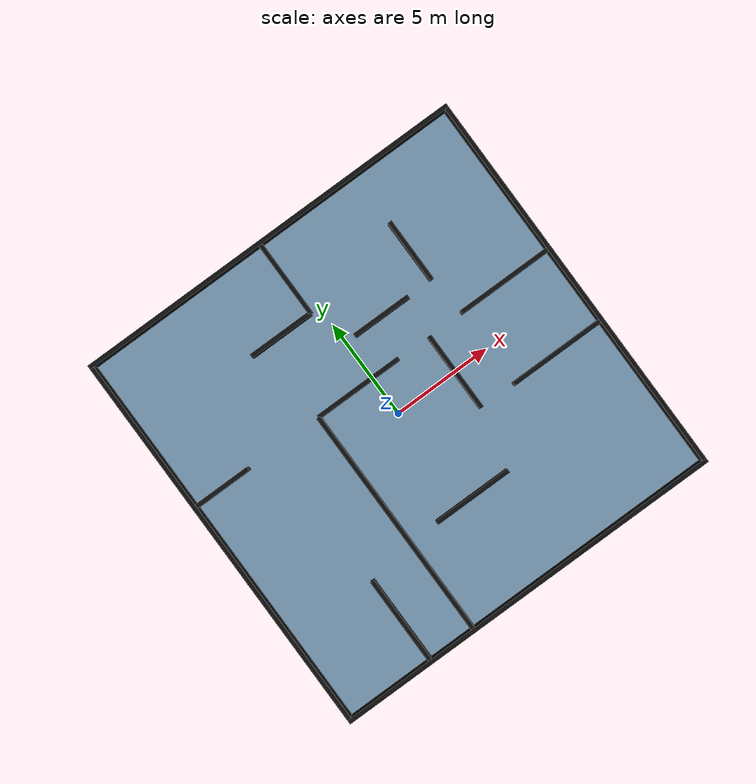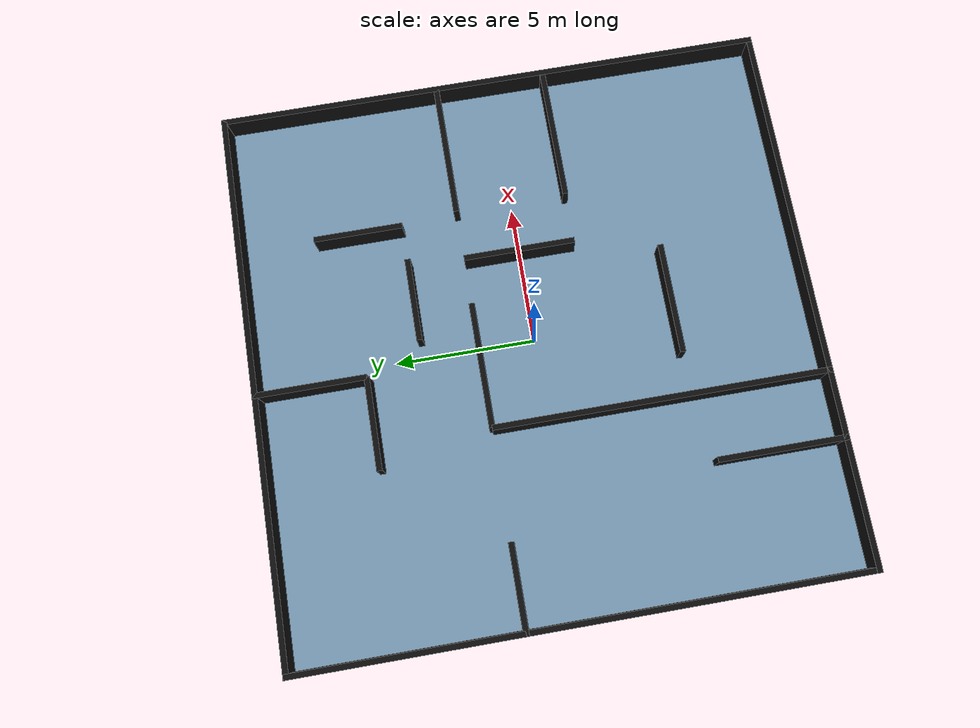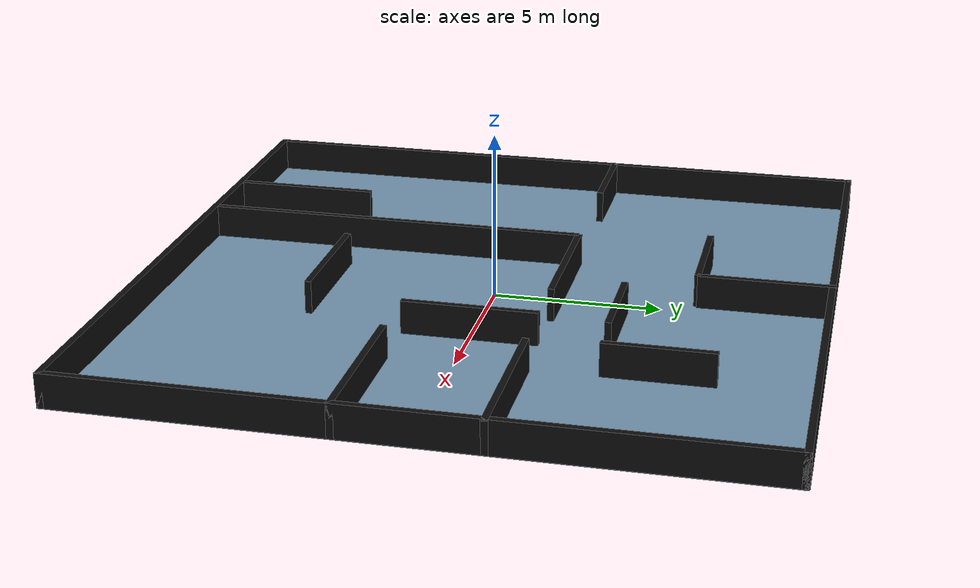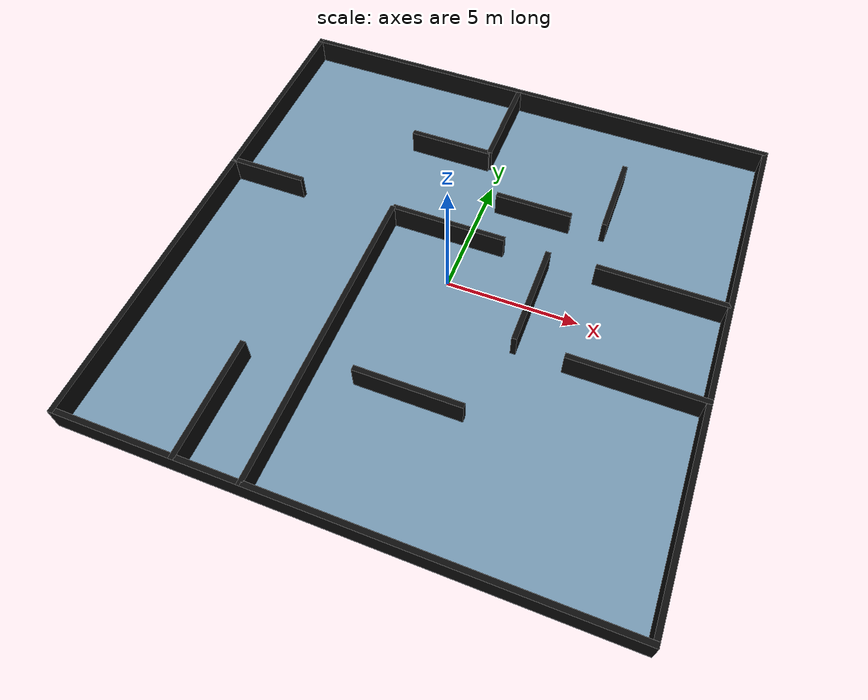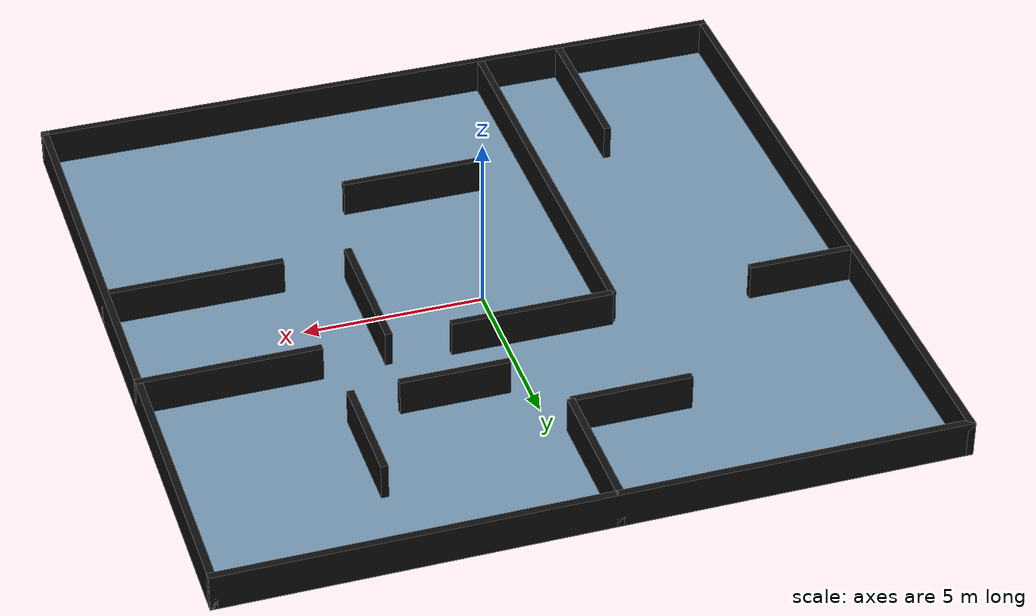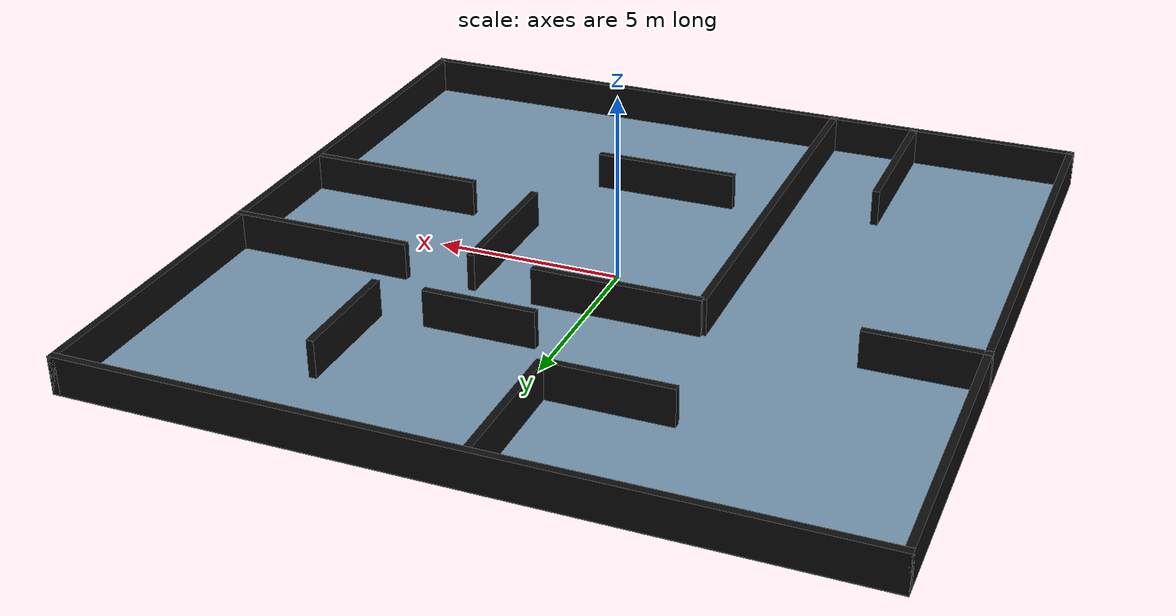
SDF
<?xml version="1.0" ?>
<sdf version="1.9">
  <world name="map_20x20_centered">

    <gravity>0 0 -9.81</gravity>

    <physics name="default_physics" type="ode">
      <max_step_size>0.001</max_step_size>
      <real_time_update_rate>1000</real_time_update_rate>

    </physics>

    <scene>
      <ambient>0.6 0.6 0.6 1</ambient>
      <background>0.8 0.8 0.8 1</background>
    </scene>

    <light name="sun" type="directional">
      <pose>0 0 10 0 0 0</pose>
      <diffuse>0.8 0.8 0.8 1</diffuse>
      <specular>0.2 0.2 0.2 1</specular>
      <direction>-0.5 0.5 -1</direction>
    </light>

    <!-- Ground plane: 20 m x 20 m, centered at world origin -->
    <model name="ground_plane">
      <static>true</static>
      <link name="link">
        <collision name="collision">
          <geometry>
            <box>
              <size>20 20 0.02</size>
            </box>
          </geometry>
        </collision>

        <visual name="visual">
          <geometry>
            <box>
              <size>20 20 0.02</size>
            </box>
          </geometry>
          <material>
            <ambient>0.45 0.58 0.68 1.0</ambient>
            <diffuse>0.45 0.58 0.68 1.0</diffuse>
            <specular>0.05 0.05 0.05 1.0</specular>
          </material>
        </visual>
      </link>
      <pose>0 0 -0.01 0 0 0</pose>
    </model>

    <!-- External boundary walls -->

    <!-- South wall: y = -10 -->
    <model name="wall_south">
      <static>true</static>
      <link name="link">
        <collision name="collision">
          <geometry>
            <box>
              <size>20 0.2 1.0</size>
            </box>
          </geometry>
        </collision>
        <visual name="visual">
          <geometry>
            <box>
              <size>20 0.2 1.0</size>
            </box>
          </geometry>
          <material>
            <ambient>0.05 0.05 0.05 1</ambient>
            <diffuse>0.05 0.05 0.05 1</diffuse>
          </material>
        </visual>
      </link>
      <pose>0 -9.9 0.5 0 0 0</pose>
    </model>

    <!-- North wall: y = 10 -->
    <model name="wall_north">
      <static>true</static>
      <link name="link">
        <collision name="collision">
          <geometry>
            <box>
              <size>20 0.2 1.0</size>
            </box>
          </geometry>
        </collision>
        <visual name="visual">
          <geometry>
            <box>
              <size>20 0.2 1.0</size>
            </box>
          </geometry>
          <material>
            <ambient>0.05 0.05 0.05 1</ambient>
            <diffuse>0.05 0.05 0.05 1</diffuse>
          </material>
        </visual>
      </link>
      <pose>0 9.9 0.5 0 0 0</pose>
    </model>

    <!-- West wall: x = -10 -->
    <model name="wall_west">
      <static>true</static>
      <link name="link">
        <collision name="collision">
          <geometry>
            <box>
              <size>0.2 20 1.0</size>
            </box>
          </geometry>
        </collision>
        <visual name="visual">
          <geometry>
            <box>
              <size>0.2 20 1.0</size>
            </box>
          </geometry>
          <material>
            <ambient>0.05 0.05 0.05 1</ambient>
            <diffuse>0.05 0.05 0.05 1</diffuse>
          </material>
        </visual>
      </link>
      <pose>-9.9 0 0.5 0 0 0</pose>
    </model>

    <!-- East wall: x = 10 -->
    <model name="wall_east">
      <static>true</static>
      <link name="link">
        <collision name="collision">
          <geometry>
            <box>
              <size>0.2 20 1.0</size>
            </box>
          </geometry>
        </collision>
        <visual name="visual">
          <geometry>
            <box>
              <size>0.2 20 1.0</size>
            </box>
          </geometry>
          <material>
            <ambient>0.05 0.05 0.05 1</ambient>
            <diffuse>0.05 0.05 0.05 1</diffuse>
          </material>
        </visual>
      </link>
      <pose>9.9 0 0.5 0 0 0</pose>
    </model>

    <!-- Internal maze walls -->

    <!-- Left middle horizontal wall -->
    <model name="wall_left_middle">
      <static>true</static>
      <link name="link">
        <collision name="collision">
          <geometry>
            <box>
              <size>3.1 0.2 1.0</size>
            </box>
          </geometry>
        </collision>
        <visual name="visual">
          <geometry>
            <box>
              <size>3.1 0.2 1.0</size>
            </box>
          </geometry>
          <material>
            <ambient>0.05 0.05 0.05 1</ambient>
            <diffuse>0.05 0.05 0.05 1</diffuse>
          </material>
        </visual>
      </link>
      <pose>-8.45 2.0 0.5 0 0 0</pose>
    </model>

    <!-- Lower-left vertical wall -->
    <model name="wall_lower_vertical">
      <static>true</static>
      <link name="link">
        <collision name="collision">
          <geometry>
            <box>
              <size>0.2 4.6 1.0</size>
            </box>
          </geometry>
        </collision>
        <visual name="visual">
          <geometry>
            <box>
              <size>0.2 4.6 1.0</size>
            </box>
          </geometry>
          <material>
            <ambient>0.05 0.05 0.05 1</ambient>
            <diffuse>0.05 0.05 0.05 1</diffuse>
          </material>
        </visual>
      </link>
      <pose>-5.4 -7.7 0.5 0 0 0</pose>
    </model>

    <!-- Central vertical wall -->
    <model name="wall_center_vertical">
      <static>true</static>
      <link name="link">
        <collision name="collision">
          <geometry>
            <box>
              <size>0.2 12.0 1.0</size>
            </box>
          </geometry>
        </collision>
        <visual name="visual">
          <geometry>
            <box>
              <size>0.2 12.0 1.0</size>
            </box>
          </geometry>
          <material>
            <ambient>0.05 0.05 0.05 1</ambient>
            <diffuse>0.05 0.05 0.05 1</diffuse>
          </material>
        </visual>
      </link>
      <pose>-3.0 -4.0 0.5 0 0 0</pose>
    </model>

    <!-- Central horizontal wall -->
    <model name="wall_center_horizontal">
      <static>true</static>
      <link name="link">
        <collision name="collision">
          <geometry>
            <box>
              <size>4.5 0.2 1.0</size>
            </box>
          </geometry>
        </collision>
        <visual name="visual">
          <geometry>
            <box>
              <size>4.5 0.2 1.0</size>
            </box>
          </geometry>
          <material>
            <ambient>0.05 0.05 0.05 1</ambient>
            <diffuse>0.05 0.05 0.05 1</diffuse>
          </material>
        </visual>
      </link>
      <pose>-0.75 2.0 0.5 0 0 0</pose>
    </model>

    <!-- Upper central vertical wall -->
    <model name="wall_top_vertical">
      <static>true</static>
      <link name="link">
        <collision name="collision">
          <geometry>
            <box>
              <size>0.2 4.0 1.0</size>
            </box>
          </geometry>
        </collision>
        <visual name="visual">
          <geometry>
            <box>
              <size>0.2 4.0 1.0</size>
            </box>
          </geometry>
          <material>
            <ambient>0.05 0.05 0.05 1</ambient>
            <diffuse>0.05 0.05 0.05 1</diffuse>
          </material>
        </visual>
      </link>
      <pose>-0.5 8.0 0.5 0 0 0</pose>
    </model>

    <!-- Upper horizontal wall -->
    <model name="wall_top_horizontal">
      <static>true</static>
      <link name="link">
        <collision name="collision">
          <geometry>
            <box>
              <size>3.3 0.2 1.0</size>
            </box>
          </geometry>
        </collision>
        <visual name="visual">
          <geometry>
            <box>
              <size>3.3 0.2 1.0</size>
            </box>
          </geometry>
          <material>
            <ambient>0.05 0.05 0.05 1</ambient>
            <diffuse>0.05 0.05 0.05 1</diffuse>
          </material>
        </visual>
      </link>
      <pose>-2.15 6.0 0.5 0 0 0</pose>
    </model>

    <!-- Right upper horizontal wall -->
    <model name="wall_right_upper">
      <static>true</static>
      <link name="link">
        <collision name="collision">
          <geometry>
            <box>
              <size>5.0 0.2 1.0</size>
            </box>
          </geometry>
        </collision>
        <visual name="visual">
          <geometry>
            <box>
              <size>5.0 0.2 1.0</size>
            </box>
          </geometry>
          <material>
            <ambient>0.05 0.05 0.05 1</ambient>
            <diffuse>0.05 0.05 0.05 1</diffuse>
          </material>
        </visual>
      </link>
      <pose>7.5 2.0 0.5 0 0 0</pose>
    </model>

    <!-- Right lower horizontal wall -->
    <model name="wall_right_lower">
      <static>true</static>
      <link name="link">
        <collision name="collision">
          <geometry>
            <box>
              <size>5.0 0.2 1.0</size>
            </box>
          </geometry>
        </collision>
        <visual name="visual">
          <geometry>
            <box>
              <size>5.0 0.2 1.0</size>
            </box>
          </geometry>
          <material>
            <ambient>0.05 0.05 0.05 1</ambient>
            <diffuse>0.05 0.05 0.05 1</diffuse>
          </material>
        </visual>
      </link>
      <pose>7.5 -2.0 0.5 0 0 0</pose>
    </model>

    <!-- Additional TP2 maze walls -->

    <!-- Lower middle horizontal wall: creates a detour in the lower region -->
    <model name="wall_tp2_lower_middle">
      <static>true</static>
      <link name="link">
        <collision name="collision">
          <geometry>
            <box>
              <size>4.0 0.2 1.0</size>
            </box>
          </geometry>
        </collision>
        <visual name="visual">
          <geometry>
            <box>
              <size>4.0 0.2 1.0</size>
            </box>
          </geometry>
          <material>
            <ambient>0.05 0.05 0.05 1</ambient>
            <diffuse>0.05 0.05 0.05 1</diffuse>
          </material>
        </visual>
      </link>
      <pose>0.5 -5.0 0.5 0 0 0</pose>
    </model>

    <!-- Central right vertical wall: increases difficulty near the center -->
    <model name="wall_tp2_center_right_vertical">
      <static>true</static>
      <link name="link">
        <collision name="collision">
          <geometry>
            <box>
              <size>0.2 4.0 1.0</size>
            </box>
          </geometry>
        </collision>
        <visual name="visual">
          <geometry>
            <box>
              <size>0.2 4.0 1.0</size>
            </box>
          </geometry>
          <material>
            <ambient>0.05 0.05 0.05 1</ambient>
            <diffuse>0.05 0.05 0.05 1</diffuse>
          </material>
        </visual>
      </link>
      <pose>3.2 0.0 0.5 0 0 0</pose>
    </model>

    <!-- Upper right vertical wall: forces a detour before the goal region -->
    <model name="wall_tp2_upper_right_vertical">
      <static>true</static>
      <link name="link">
        <collision name="collision">
          <geometry>
            <box>
              <size>0.2 3.2 1.0</size>
            </box>
          </geometry>
        </collision>
        <visual name="visual">
          <geometry>
            <box>
              <size>0.2 3.2 1.0</size>
            </box>
          </geometry>
          <material>
            <ambient>0.05 0.05 0.05 1</ambient>
            <diffuse>0.05 0.05 0.05 1</diffuse>
          </material>
        </visual>
      </link>
      <pose>4.8 5.6 0.5 0 0 0</pose>
    </model>

    <!-- Upper middle horizontal wall: creates an additional narrow passage -->
    <model name="wall_tp2_upper_middle">
      <static>true</static>
      <link name="link">
        <collision name="collision">
          <geometry>
            <box>
              <size>3.0 0.2 1.0</size>
            </box>
          </geometry>
        </collision>
        <visual name="visual">
          <geometry>
            <box>
              <size>3.0 0.2 1.0</size>
            </box>
          </geometry>
          <material>
            <ambient>0.05 0.05 0.05 1</ambient>
            <diffuse>0.05 0.05 0.05 1</diffuse>
          </material>
        </visual>
      </link>
      <pose>2.0 4.0 0.5 0 0 0</pose>
    </model>

  </world>
</sdf>
